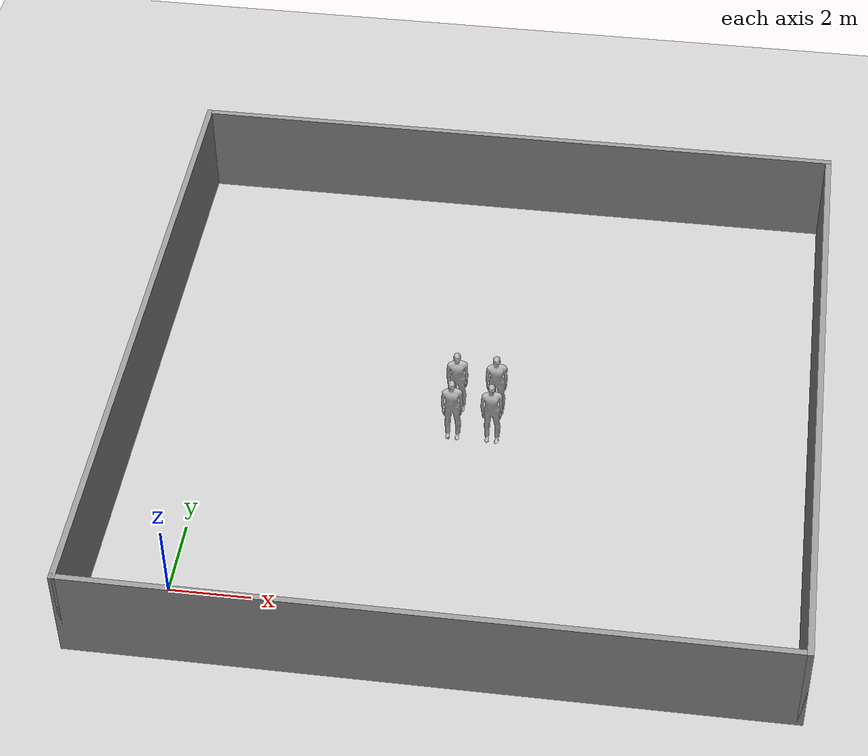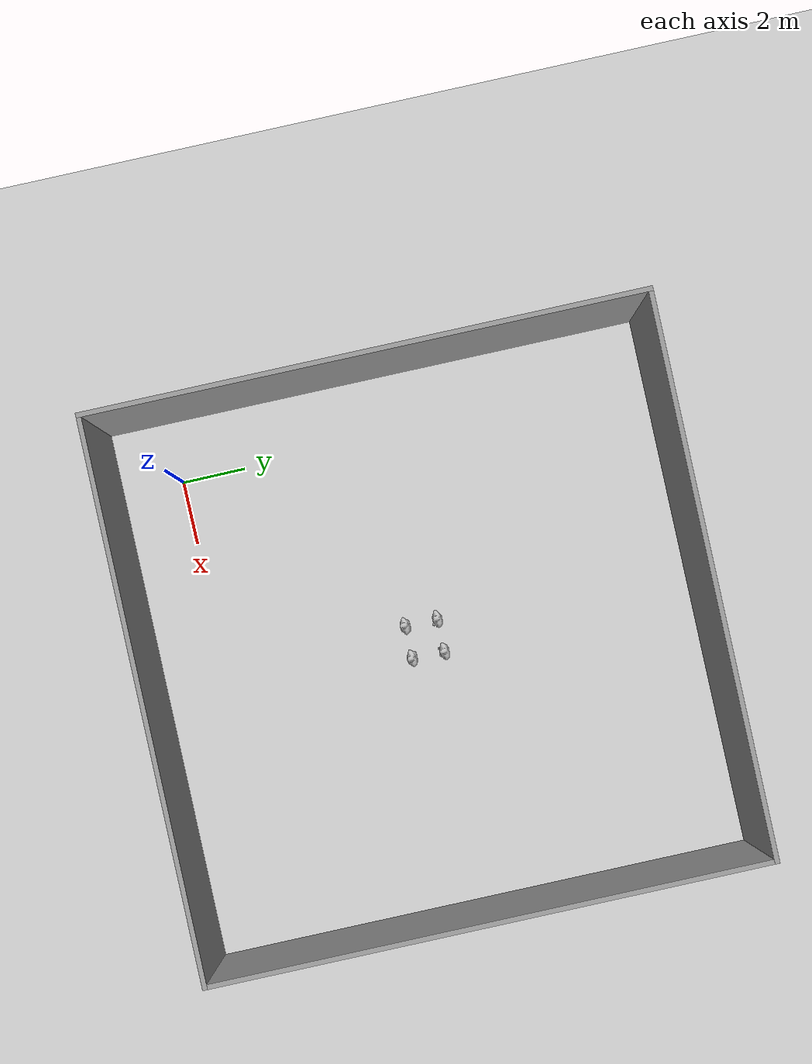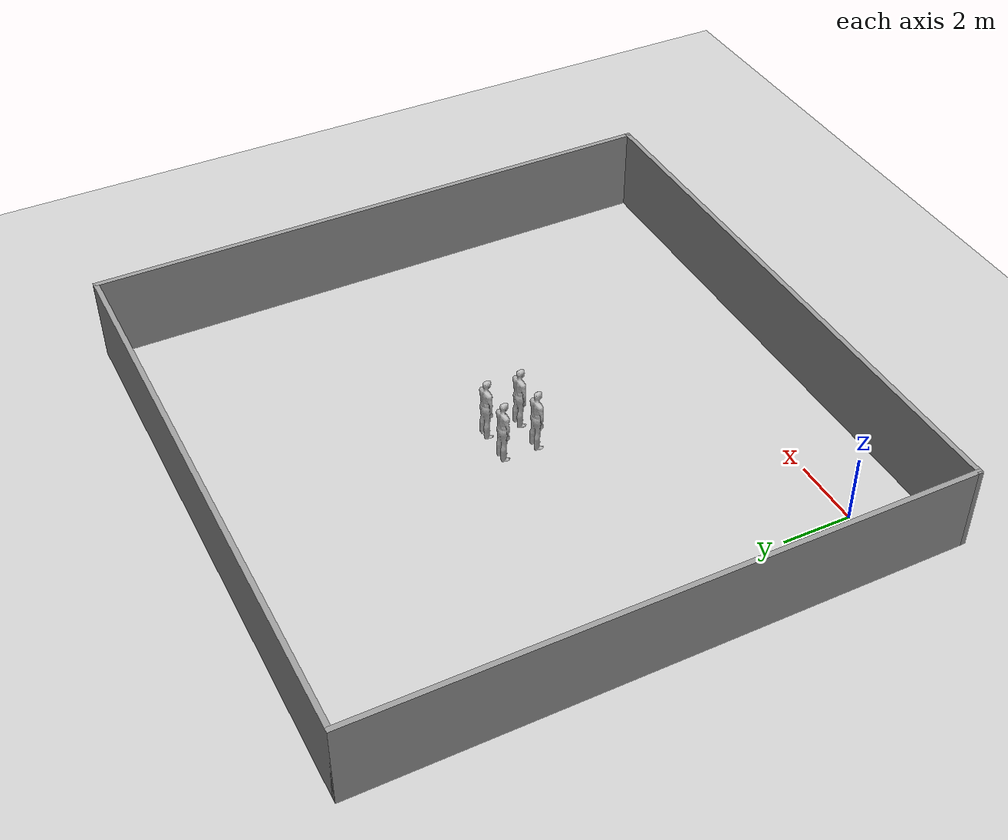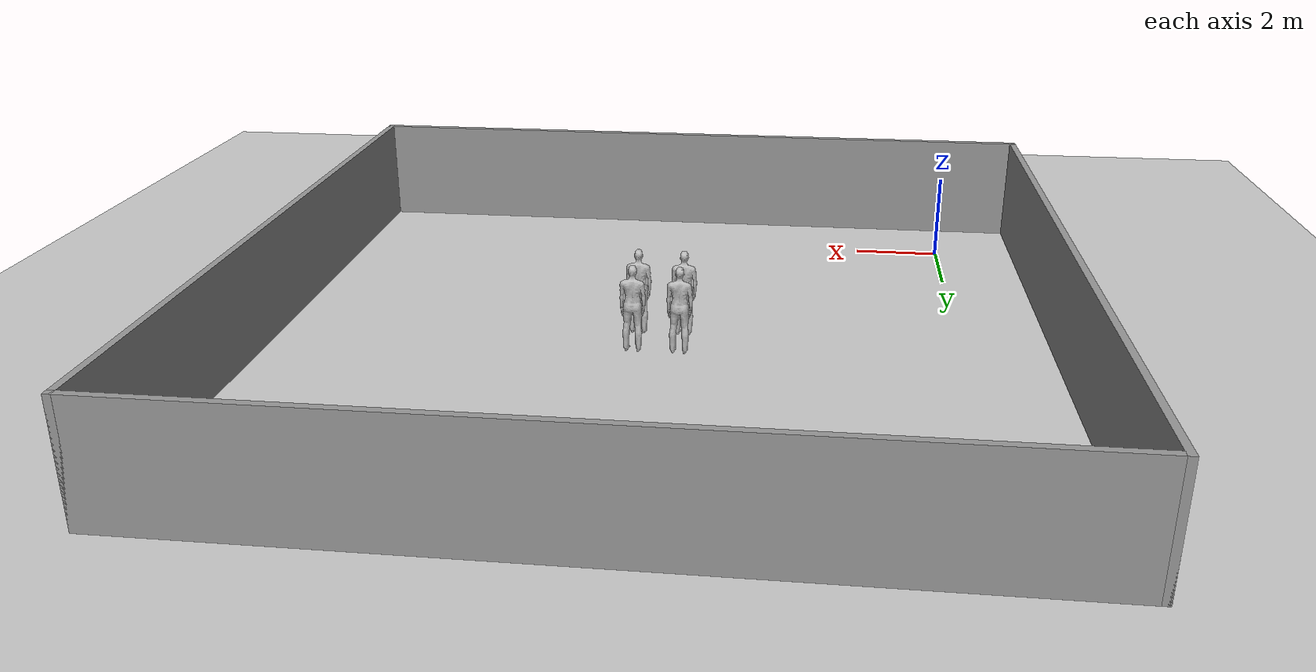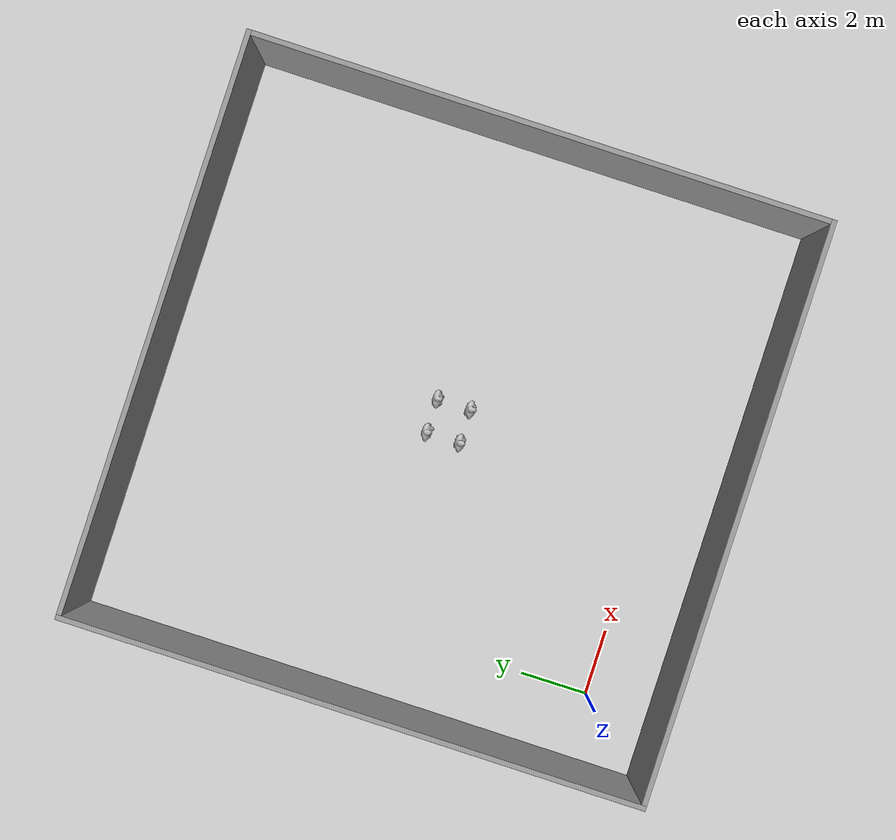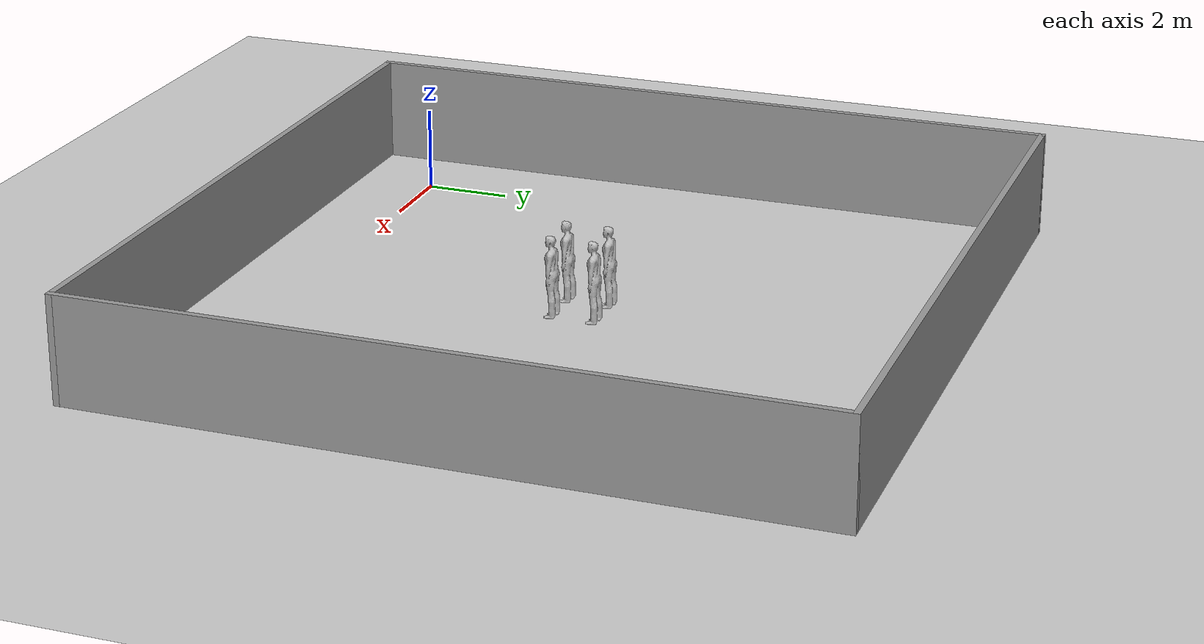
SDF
<sdf version="1.6">
 <world name="default">
  <light name="sun" type="directional">
   <pose>0 0 10 0 -0 0</pose>
   <diffuse>0.8 0.8 0.8 1</diffuse>
   <specular>0.2 0.2 0.2 1</specular>
   <attenuation>
    <range>1000</range>
    <constant>0.9</constant>
    <linear>0.01</linear>
    <quadratic>0.001</quadratic>
   </attenuation>
   <direction>-0.5 0.1 -0.9</direction>
  </light>
  <model name="ground_plane">
   <static>1</static>
   <link name="link">
    <collision name="collision">
     <geometry><plane><normal>0 0 1</normal><size>100 100</size></plane></geometry>
     <surface><friction><ode><mu>100</mu><mu2>50</mu2></ode></friction></surface>
    </collision>
    <visual name="visual">
     <cast_shadows>0</cast_shadows>
     <geometry><plane><normal>0 0 1</normal><size>100 100</size></plane></geometry>
     <material>
      <script><uri>file://media/materials/scripts/gazebo.material</uri><name>Gazebo/Grey</name></script>
     </material>
    </visual>
   </link>
  </model>
  <gravity>0 0 -9.8</gravity>
  <magnetic_field>6e-06 2.3e-05 -4.2e-05</magnetic_field>
  <atmosphere type="adiabatic"/>
  <physics name="default_physics" default="0" type="ode">
   <max_step_size>0.001</max_step_size>
   <real_time_factor>1</real_time_factor>
   <real_time_update_rate>1000</real_time_update_rate>
  </physics>
  <scene><ambient>0.4 0.4 0.4 1</ambient><background>0.7 0.7 0.7 1</background><shadows>0</shadows></scene>
  <spherical_coordinates>
   <surface_model>EARTH_WGS84</surface_model>
   <latitude_deg>0</latitude_deg>
   <longitude_deg>0</longitude_deg>
   <elevation>0</elevation>
   <heading_deg>0</heading_deg>
  </spherical_coordinates>
  <model name="person_standing_3">
   <link name="link">
    <inertial>
     <pose>0 -0.1 0.95 0 -0 0</pose>
     <mass>80</mass>
     <inertia><ixx>24.88</ixx><ixy>0</ixy><ixz>0</ixz><iyy>25.73</iyy><iyz>0</iyz><izz>2.48</izz></inertia>
    </inertial>
    <collision name="bottom">
     <pose>0 -0.1 0.01 0 -0 0</pose>
     <geometry><box><size>0.5 0.35 0.02</size></box></geometry>
    </collision>
    <collision name="person">
     <pose>0 0 0.02 0.04 -0 0</pose>
     <geometry><mesh><uri>model://person_standing/meshes/standing.dae</uri></mesh></geometry>
    </collision>
    <visual name="visual">
     <pose>0 0 0.02 0.04 -0 0</pose>
     <geometry><mesh><uri>model://person_standing/meshes/standing.dae</uri></mesh></geometry>
    </visual>
   </link>
   <pose>6.99998 6 -1e-06 -1e-06 1e-06 0.001398</pose>
  </model>
  <model name="person_standing_0">
   <link name="link">
    <inertial>
     <pose>0 -0.1 0.95 0 -0 0</pose>
     <mass>80</mass>
     <inertia><ixx>24.88</ixx><ixy>0</ixy><ixz>0</ixz><iyy>25.73</iyy><iyz>0</iyz><izz>2.48</izz></inertia>
    </inertial>
    <collision name="bottom">
     <pose>0 -0.1 0.01 0 -0 0</pose>
     <geometry><box><size>0.5 0.35 0.02</size></box></geometry>
    </collision>
    <collision name="person">
     <pose>0 0 0.02 0.04 -0 0</pose>
     <geometry><mesh><uri>model://person_standing/meshes/standing.dae</uri></mesh></geometry>
    </collision>
    <visual name="visual">
     <pose>0 0 0.02 0.04 -0 0</pose>
     <geometry><mesh><uri>model://person_standing/meshes/standing.dae</uri></mesh></geometry>
    </visual>
   </link>
   <pose>6.99998 7 1e-06 1e-06 1e-06 0.001092</pose>
  </model>
  <model name="person_standing_1">
   <link name="link">
    <inertial>
     <pose>0 -0.1 0.95 0 -0 0</pose>
     <mass>80</mass>
     <inertia><ixx>24.88</ixx><ixy>0</ixy><ixz>0</ixz><iyy>25.73</iyy><iyz>0</iyz><izz>2.48</izz></inertia>
    </inertial>
    <collision name="bottom">
     <pose>0 -0.1 0.01 0 -0 0</pose>
     <geometry><box><size>0.5 0.35 0.02</size></box></geometry>
    </collision>
    <collision name="person">
     <pose>0 0 0.02 0.04 -0 0</pose>
     <geometry><mesh><uri>model://person_standing/meshes/standing.dae</uri></mesh></geometry>
    </collision>
    <visual name="visual">
     <pose>0 0 0.02 0.04 -0 0</pose>
     <geometry><mesh><uri>model://person_standing/meshes/standing.dae</uri></mesh></geometry>
    </visual>
   </link>
   <pose>5.99996 6 -1e-06 -1e-06 1e-06 -0.000157</pose>
  </model>
  <model name="person_standing_2">
   <link name="link">
    <inertial>
     <pose>0 -0.1 0.95 0 -0 0</pose>
     <mass>80</mass>
     <inertia><ixx>24.88</ixx><ixy>0</ixy><ixz>0</ixz><iyy>25.73</iyy><iyz>0</iyz><izz>2.48</izz></inertia>
    </inertial>
    <collision name="bottom">
     <pose>0 -0.1 0.01 0 -0 0</pose>
     <geometry><box><size>0.5 0.35 0.02</size></box></geometry>
    </collision>
    <collision name="person">
     <pose>0 0 0.02 0.04 -0 0</pose>
     <geometry><mesh><uri>model://person_standing/meshes/standing.dae</uri></mesh></geometry>
    </collision>
    <visual name="visual">
     <pose>0 0 0.02 0.04 -0 0</pose>
     <geometry><mesh><uri>model://person_standing/meshes/standing.dae</uri></mesh></geometry>
    </visual>
   </link>
   <pose>5.99999 7 -0 -1e-06 -1e-06 0.000264</pose>
  </model>
  <model name="ped_world">
   <pose>6.5 6.5 0 0 -0 0</pose>
   <link name="Wall_1">
    <collision name="Wall_1_Collision">
     <geometry><box><size>17.15 0.15 2.5</size></box></geometry>
     <pose>0 0 1.25 0 -0 0</pose>
    </collision>
    <visual name="Wall_1_Visual">
     <pose>0 0 1.25 0 -0 0</pose>
     <geometry><box><size>17.15 0.15 2.5</size></box></geometry>
     <material>
      <script><uri>file://media/materials/scripts/gazebo.material</uri><name>Gazebo/Grey</name></script>
      <ambient>1 1 1 1</ambient>
     </material>
     <meta><layer>0</layer></meta>
    </visual>
    <pose>-8.5 0 0 0 -0 1.5708</pose>
   </link>
   <link name="Wall_10">
    <collision name="Wall_10_Collision">
     <geometry><box><size>17.15 0.15 2.5</size></box></geometry>
     <pose>0 0 1.25 0 -0 0</pose>
    </collision>
    <visual name="Wall_10_Visual">
     <pose>0 0 1.25 0 -0 0</pose>
     <geometry><box><size>17.15 0.15 2.5</size></box></geometry>
     <material>
      <script><uri>file://media/materials/scripts/gazebo.material</uri><name>Gazebo/Grey</name></script>
      <ambient>1 1 1 1</ambient>
     </material>
     <meta><layer>0</layer></meta>
    </visual>
    <pose>0 8.5 0 0 -0 0</pose>
   </link>
   <link name="Wall_5">
    <collision name="Wall_5_Collision">
     <geometry><box><size>17.15 0.15 2.5</size></box></geometry>
     <pose>0 0 1.25 0 -0 0</pose>
    </collision>
    <visual name="Wall_5_Visual">
     <pose>0 0 1.25 0 -0 0</pose>
     <geometry><box><size>17.15 0.15 2.5</size></box></geometry>
     <material>
      <script><uri>file://media/materials/scripts/gazebo.material</uri><name>Gazebo/Grey</name></script>
      <ambient>1 1 1 1</ambient>
     </material>
     <meta><layer>0</layer></meta>
    </visual>
    <pose>0 -8.5 0 0 -0 0</pose>
   </link>
   <link name="Wall_8">
    <collision name="Wall_8_Collision">
     <geometry><box><size>17.15 0.15 2.5</size></box></geometry>
     <pose>0 0 1.25 0 -0 0</pose>
    </collision>
    <visual name="Wall_8_Visual">
     <pose>0 0 1.25 0 -0 0</pose>
     <geometry><box><size>17.15 0.15 2.5</size></box></geometry>
     <material>
      <script><uri>file://media/materials/scripts/gazebo.material</uri><name>Gazebo/Grey</name></script>
      <ambient>1 1 1 1</ambient>
     </material>
     <meta><layer>0</layer></meta>
    </visual>
    <pose>8.5 0 0 0 -0 -1.5708</pose>
   </link>
   <static>1</static>
  </model>
 </world>
</sdf>
